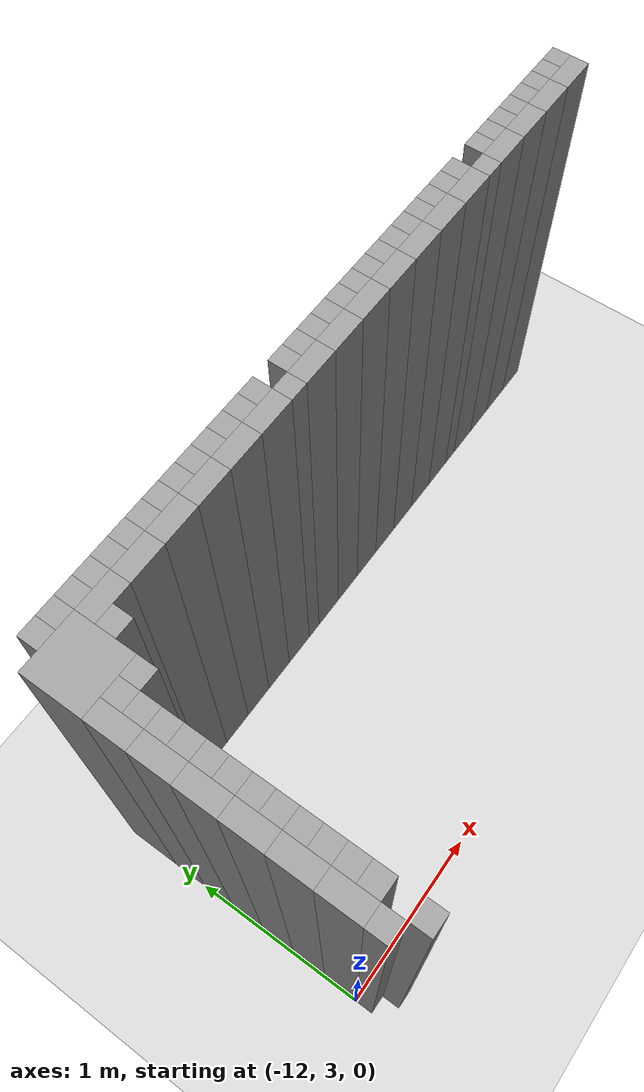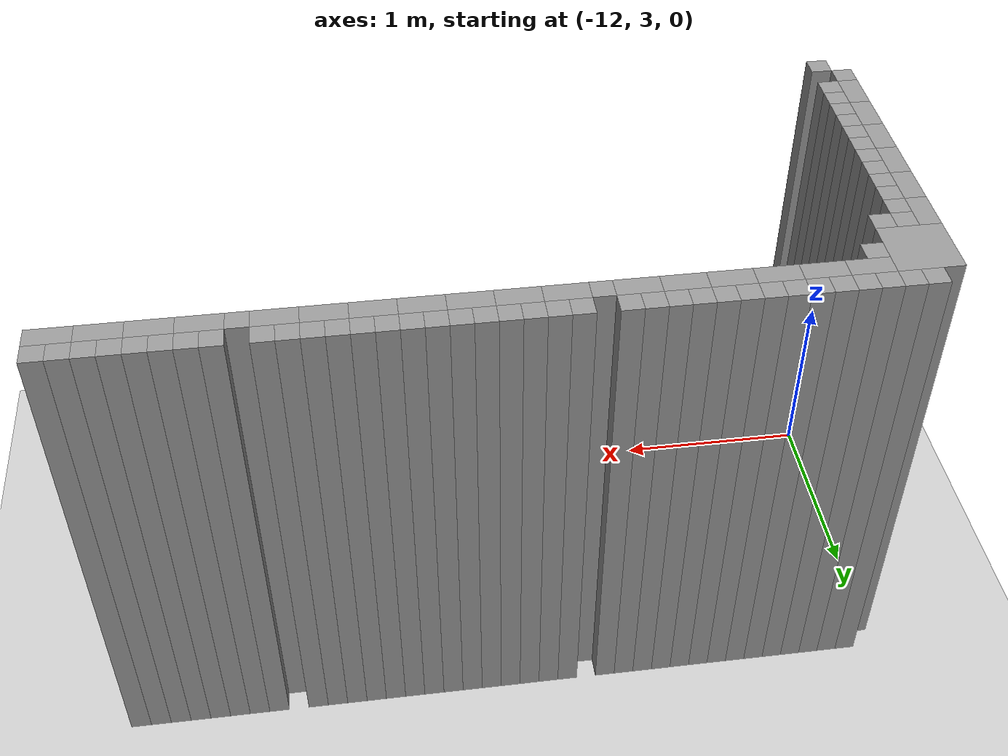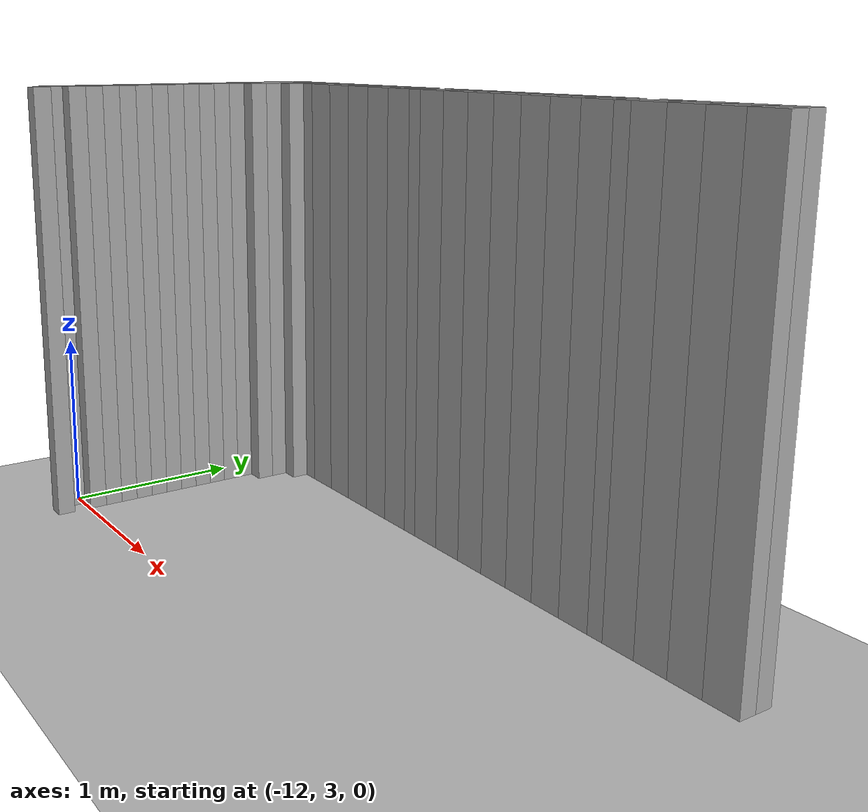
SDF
<sdf version="1.6">
 <world name="default">
  <include><uri>model://sun</uri></include>
  <include><uri>model://ground_plane</uri></include>
  <model name="stage_test">
   <static>1</static>
   <pose>-12 -12 0 0 0 0</pose>
   <link name="Wall_1">
    <pose>0.15 16.55 0 0 0 0</pose>
    <collision name="Wall_1_collision">
     <pose>0 0 1.25 0 0 0</pose>
     <geometry><box><size>0.1 0.10000000000000142 2.5</size></box></geometry>
    </collision>
    <visual name="Wall_1_visual">
     <pose>0 0 1.25 0 0 0</pose>
     <geometry><box><size>0.1 0.10000000000000142 2.5</size></box></geometry>
     <material>
      <script><uri>file://media/materials/scripts/gazebo.material</uri><name>Gazebo/Grey</name></script>
      <ambient>1 1 1 1</ambient>
     </material>
    </visual>
   </link>
   <link name="Wall_2">
    <pose>0.25 16.55 0 0 0 0</pose>
    <collision name="Wall_2_collision">
     <pose>0 0 1.25 0 0 0</pose>
     <geometry><box><size>0.10000000000000003 0.10000000000000142 2.5</size></box></geometry>
    </collision>
    <visual name="Wall_2_visual">
     <pose>0 0 1.25 0 0 0</pose>
     <geometry><box><size>0.10000000000000003 0.10000000000000142 2.5</size></box></geometry>
     <material>
      <script><uri>file://media/materials/scripts/gazebo.material</uri><name>Gazebo/Grey</name></script>
      <ambient>1 1 1 1</ambient>
     </material>
    </visual>
   </link>
   <link name="Wall_3">
    <pose>0.35000000000000003 16.55 0 0 0 0</pose>
    <collision name="Wall_3_collision">
     <pose>0 0 1.25 0 0 0</pose>
     <geometry><box><size>0.09999999999999998 0.10000000000000142 2.5</size></box></geometry>
    </collision>
    <visual name="Wall_3_visual">
     <pose>0 0 1.25 0 0 0</pose>
     <geometry><box><size>0.09999999999999998 0.10000000000000142 2.5</size></box></geometry>
     <material>
      <script><uri>file://media/materials/scripts/gazebo.material</uri><name>Gazebo/Grey</name></script>
      <ambient>1 1 1 1</ambient>
     </material>
    </visual>
   </link>
   <link name="Wall_4">
    <pose>0.44999999999999996 16.55 0 0 0 0</pose>
    <collision name="Wall_4_collision">
     <pose>0 0 1.25 0 0 0</pose>
     <geometry><box><size>0.09999999999999998 0.10000000000000142 2.5</size></box></geometry>
    </collision>
    <visual name="Wall_4_visual">
     <pose>0 0 1.25 0 0 0</pose>
     <geometry><box><size>0.09999999999999998 0.10000000000000142 2.5</size></box></geometry>
     <material>
      <script><uri>file://media/materials/scripts/gazebo.material</uri><name>Gazebo/Grey</name></script>
      <ambient>1 1 1 1</ambient>
     </material>
    </visual>
   </link>
   <link name="Wall_5">
    <pose>0.55 16.55 0 0 0 0</pose>
    <collision name="Wall_5_collision">
     <pose>0 0 1.25 0 0 0</pose>
     <geometry><box><size>0.10000000000000009 0.10000000000000142 2.5</size></box></geometry>
    </collision>
    <visual name="Wall_5_visual">
     <pose>0 0 1.25 0 0 0</pose>
     <geometry><box><size>0.10000000000000009 0.10000000000000142 2.5</size></box></geometry>
     <material>
      <script><uri>file://media/materials/scripts/gazebo.material</uri><name>Gazebo/Grey</name></script>
      <ambient>1 1 1 1</ambient>
     </material>
    </visual>
   </link>
   <link name="Wall_6">
    <pose>0.6500000000000001 16.55 0 0 0 0</pose>
    <collision name="Wall_6_collision">
     <pose>0 0 1.25 0 0 0</pose>
     <geometry><box><size>0.09999999999999998 0.10000000000000142 2.5</size></box></geometry>
    </collision>
    <visual name="Wall_6_visual">
     <pose>0 0 1.25 0 0 0</pose>
     <geometry><box><size>0.09999999999999998 0.10000000000000142 2.5</size></box></geometry>
     <material>
      <script><uri>file://media/materials/scripts/gazebo.material</uri><name>Gazebo/Grey</name></script>
      <ambient>1 1 1 1</ambient>
     </material>
    </visual>
   </link>
   <link name="Wall_7">
    <pose>0.75 16.55 0 0 0 0</pose>
    <collision name="Wall_7_collision">
     <pose>0 0 1.25 0 0 0</pose>
     <geometry><box><size>0.09999999999999998 0.10000000000000142 2.5</size></box></geometry>
    </collision>
    <visual name="Wall_7_visual">
     <pose>0 0 1.25 0 0 0</pose>
     <geometry><box><size>0.09999999999999998 0.10000000000000142 2.5</size></box></geometry>
     <material>
      <script><uri>file://media/materials/scripts/gazebo.material</uri><name>Gazebo/Grey</name></script>
      <ambient>1 1 1 1</ambient>
     </material>
    </visual>
   </link>
   <link name="Wall_8">
    <pose>0.8500000000000001 16.55 0 0 0 0</pose>
    <collision name="Wall_8_collision">
     <pose>0 0 1.25 0 0 0</pose>
     <geometry><box><size>0.09999999999999998 0.10000000000000142 2.5</size></box></geometry>
    </collision>
    <visual name="Wall_8_visual">
     <pose>0 0 1.25 0 0 0</pose>
     <geometry><box><size>0.09999999999999998 0.10000000000000142 2.5</size></box></geometry>
     <material>
      <script><uri>file://media/materials/scripts/gazebo.material</uri><name>Gazebo/Grey</name></script>
      <ambient>1 1 1 1</ambient>
     </material>
    </visual>
   </link>
   <link name="Wall_9">
    <pose>0.95 16.55 0 0 0 0</pose>
    <collision name="Wall_9_collision">
     <pose>0 0 1.25 0 0 0</pose>
     <geometry><box><size>0.09999999999999998 0.10000000000000142 2.5</size></box></geometry>
    </collision>
    <visual name="Wall_9_visual">
     <pose>0 0 1.25 0 0 0</pose>
     <geometry><box><size>0.09999999999999998 0.10000000000000142 2.5</size></box></geometry>
     <material>
      <script><uri>file://media/materials/scripts/gazebo.material</uri><name>Gazebo/Grey</name></script>
      <ambient>1 1 1 1</ambient>
     </material>
    </visual>
   </link>
   <link name="Wall_10">
    <pose>1.05 16.55 0 0 0 0</pose>
    <collision name="Wall_10_collision">
     <pose>0 0 1.25 0 0 0</pose>
     <geometry><box><size>0.10000000000000009 0.10000000000000142 2.5</size></box></geometry>
    </collision>
    <visual name="Wall_10_visual">
     <pose>0 0 1.25 0 0 0</pose>
     <geometry><box><size>0.10000000000000009 0.10000000000000142 2.5</size></box></geometry>
     <material>
      <script><uri>file://media/materials/scripts/gazebo.material</uri><name>Gazebo/Grey</name></script>
      <ambient>1 1 1 1</ambient>
     </material>
    </visual>
   </link>
   <link name="Wall_11">
    <pose>1.1500000000000001 16.55 0 0 0 0</pose>
    <collision name="Wall_11_collision">
     <pose>0 0 1.25 0 0 0</pose>
     <geometry><box><size>0.10000000000000009 0.10000000000000142 2.5</size></box></geometry>
    </collision>
    <visual name="Wall_11_visual">
     <pose>0 0 1.25 0 0 0</pose>
     <geometry><box><size>0.10000000000000009 0.10000000000000142 2.5</size></box></geometry>
     <material>
      <script><uri>file://media/materials/scripts/gazebo.material</uri><name>Gazebo/Grey</name></script>
      <ambient>1 1 1 1</ambient>
     </material>
    </visual>
   </link>
   <link name="Wall_12">
    <pose>1.25 16.55 0 0 0 0</pose>
    <collision name="Wall_12_collision">
     <pose>0 0 1.25 0 0 0</pose>
     <geometry><box><size>0.09999999999999987 0.10000000000000142 2.5</size></box></geometry>
    </collision>
    <visual name="Wall_12_visual">
     <pose>0 0 1.25 0 0 0</pose>
     <geometry><box><size>0.09999999999999987 0.10000000000000142 2.5</size></box></geometry>
     <material>
      <script><uri>file://media/materials/scripts/gazebo.material</uri><name>Gazebo/Grey</name></script>
      <ambient>1 1 1 1</ambient>
     </material>
    </visual>
   </link>
   <link name="Wall_13">
    <pose>1.35 16.55 0 0 0 0</pose>
    <collision name="Wall_13_collision">
     <pose>0 0 1.25 0 0 0</pose>
     <geometry><box><size>0.10000000000000009 0.10000000000000142 2.5</size></box></geometry>
    </collision>
    <visual name="Wall_13_visual">
     <pose>0 0 1.25 0 0 0</pose>
     <geometry><box><size>0.10000000000000009 0.10000000000000142 2.5</size></box></geometry>
     <material>
      <script><uri>file://media/materials/scripts/gazebo.material</uri><name>Gazebo/Grey</name></script>
      <ambient>1 1 1 1</ambient>
     </material>
    </visual>
   </link>
   <link name="Wall_14">
    <pose>1.4500000000000002 16.55 0 0 0 0</pose>
    <collision name="Wall_14_collision">
     <pose>0 0 1.25 0 0 0</pose>
     <geometry><box><size>0.09999999999999987 0.10000000000000142 2.5</size></box></geometry>
    </collision>
    <visual name="Wall_14_visual">
     <pose>0 0 1.25 0 0 0</pose>
     <geometry><box><size>0.09999999999999987 0.10000000000000142 2.5</size></box></geometry>
     <material>
      <script><uri>file://media/materials/scripts/gazebo.material</uri><name>Gazebo/Grey</name></script>
      <ambient>1 1 1 1</ambient>
     </material>
    </visual>
   </link>
   <link name="Wall_15">
    <pose>0.15000000000000002 16.35 0 0 0 0</pose>
    <collision name="Wall_15_collision">
     <pose>0 0 1.25 0 0 0</pose>
     <geometry><box><size>0.30000000000000004 0.3000000000000007 2.5</size></box></geometry>
    </collision>
    <visual name="Wall_15_visual">
     <pose>0 0 1.25 0 0 0</pose>
     <geometry><box><size>0.30000000000000004 0.3000000000000007 2.5</size></box></geometry>
     <material>
      <script><uri>file://media/materials/scripts/gazebo.material</uri><name>Gazebo/Grey</name></script>
      <ambient>1 1 1 1</ambient>
     </material>
    </visual>
   </link>
   <link name="Wall_16">
    <pose>0.05 16.1 0 0 0 0</pose>
    <collision name="Wall_16_collision">
     <pose>0 0 1.25 0 0 0</pose>
     <geometry><box><size>0.1 0.1999999999999993 2.5</size></box></geometry>
    </collision>
    <visual name="Wall_16_visual">
     <pose>0 0 1.25 0 0 0</pose>
     <geometry><box><size>0.1 0.1999999999999993 2.5</size></box></geometry>
     <material>
      <script><uri>file://media/materials/scripts/gazebo.material</uri><name>Gazebo/Grey</name></script>
      <ambient>1 1 1 1</ambient>
     </material>
    </visual>
   </link>
   <link name="Wall_17">
    <pose>0.05 15.9 0 0 0 0</pose>
    <collision name="Wall_17_collision">
     <pose>0 0 1.25 0 0 0</pose>
     <geometry><box><size>0.1 0.1999999999999993 2.5</size></box></geometry>
    </collision>
    <visual name="Wall_17_visual">
     <pose>0 0 1.25 0 0 0</pose>
     <geometry><box><size>0.1 0.1999999999999993 2.5</size></box></geometry>
     <material>
      <script><uri>file://media/materials/scripts/gazebo.material</uri><name>Gazebo/Grey</name></script>
      <ambient>1 1 1 1</ambient>
     </material>
    </visual>
   </link>
   <link name="Wall_18">
    <pose>0.15 16.150000000000002 0 0 0 0</pose>
    <collision name="Wall_18_collision">
     <pose>0 0 1.25 0 0 0</pose>
     <geometry><box><size>0.1 0.09999999999999787 2.5</size></box></geometry>
    </collision>
    <visual name="Wall_18_visual">
     <pose>0 0 1.25 0 0 0</pose>
     <geometry><box><size>0.1 0.09999999999999787 2.5</size></box></geometry>
     <material>
      <script><uri>file://media/materials/scripts/gazebo.material</uri><name>Gazebo/Grey</name></script>
      <ambient>1 1 1 1</ambient>
     </material>
    </visual>
   </link>
   <link name="Wall_19">
    <pose>0.15 16.05 0 0 0 0</pose>
    <collision name="Wall_19_collision">
     <pose>0 0 1.25 0 0 0</pose>
     <geometry><box><size>0.1 0.10000000000000142 2.5</size></box></geometry>
    </collision>
    <visual name="Wall_19_visual">
     <pose>0 0 1.25 0 0 0</pose>
     <geometry><box><size>0.1 0.10000000000000142 2.5</size></box></geometry>
     <material>
      <script><uri>file://media/materials/scripts/gazebo.material</uri><name>Gazebo/Grey</name></script>
      <ambient>1 1 1 1</ambient>
     </material>
    </visual>
   </link>
   <link name="Wall_20">
    <pose>0.25 16.150000000000002 0 0 0 0</pose>
    <collision name="Wall_20_collision">
     <pose>0 0 1.25 0 0 0</pose>
     <geometry><box><size>0.10000000000000003 0.09999999999999787 2.5</size></box></geometry>
    </collision>
    <visual name="Wall_20_visual">
     <pose>0 0 1.25 0 0 0</pose>
     <geometry><box><size>0.10000000000000003 0.09999999999999787 2.5</size></box></geometry>
     <material>
      <script><uri>file://media/materials/scripts/gazebo.material</uri><name>Gazebo/Grey</name></script>
      <ambient>1 1 1 1</ambient>
     </material>
    </visual>
   </link>
   <link name="Wall_21">
    <pose>0.15 15.95 0 0 0 0</pose>
    <collision name="Wall_21_collision">
     <pose>0 0 1.25 0 0 0</pose>
     <geometry><box><size>0.1 0.09999999999999964 2.5</size></box></geometry>
    </collision>
    <visual name="Wall_21_visual">
     <pose>0 0 1.25 0 0 0</pose>
     <geometry><box><size>0.1 0.09999999999999964 2.5</size></box></geometry>
     <material>
      <script><uri>file://media/materials/scripts/gazebo.material</uri><name>Gazebo/Grey</name></script>
      <ambient>1 1 1 1</ambient>
     </material>
    </visual>
   </link>
   <link name="Wall_22">
    <pose>0.15 15.85 0 0 0 0</pose>
    <collision name="Wall_22_collision">
     <pose>0 0 1.25 0 0 0</pose>
     <geometry><box><size>0.1 0.09999999999999964 2.5</size></box></geometry>
    </collision>
    <visual name="Wall_22_visual">
     <pose>0 0 1.25 0 0 0</pose>
     <geometry><box><size>0.1 0.09999999999999964 2.5</size></box></geometry>
     <material>
      <script><uri>file://media/materials/scripts/gazebo.material</uri><name>Gazebo/Grey</name></script>
      <ambient>1 1 1 1</ambient>
     </material>
    </visual>
   </link>
   <link name="Wall_23">
    <pose>0.4 16.450000000000003 0 0 0 0</pose>
    <collision name="Wall_23_collision">
     <pose>0 0 1.25 0 0 0</pose>
     <geometry><box><size>0.19999999999999996 0.09999999999999787 2.5</size></box></geometry>
    </collision>
    <visual name="Wall_23_visual">
     <pose>0 0 1.25 0 0 0</pose>
     <geometry><box><size>0.19999999999999996 0.09999999999999787 2.5</size></box></geometry>
     <material>
      <script><uri>file://media/materials/scripts/gazebo.material</uri><name>Gazebo/Grey</name></script>
      <ambient>1 1 1 1</ambient>
     </material>
    </visual>
   </link>
   <link name="Wall_24">
    <pose>0.35000000000000003 16.35 0 0 0 0</pose>
    <collision name="Wall_24_collision">
     <pose>0 0 1.25 0 0 0</pose>
     <geometry><box><size>0.09999999999999998 0.10000000000000142 2.5</size></box></geometry>
    </collision>
    <visual name="Wall_24_visual">
     <pose>0 0 1.25 0 0 0</pose>
     <geometry><box><size>0.09999999999999998 0.10000000000000142 2.5</size></box></geometry>
     <material>
      <script><uri>file://media/materials/scripts/gazebo.material</uri><name>Gazebo/Grey</name></script>
      <ambient>1 1 1 1</ambient>
     </material>
    </visual>
   </link>
   <link name="Wall_25">
    <pose>0.6000000000000001 16.450000000000003 0 0 0 0</pose>
    <collision name="Wall_25_collision">
     <pose>0 0 1.25 0 0 0</pose>
     <geometry><box><size>0.20000000000000007 0.09999999999999787 2.5</size></box></geometry>
    </collision>
    <visual name="Wall_25_visual">
     <pose>0 0 1.25 0 0 0</pose>
     <geometry><box><size>0.20000000000000007 0.09999999999999787 2.5</size></box></geometry>
     <material>
      <script><uri>file://media/materials/scripts/gazebo.material</uri><name>Gazebo/Grey</name></script>
      <ambient>1 1 1 1</ambient>
     </material>
    </visual>
   </link>
   <link name="Wall_26">
    <pose>0.05 15.7 0 0 0 0</pose>
    <collision name="Wall_26_collision">
     <pose>0 0 1.25 0 0 0</pose>
     <geometry><box><size>0.1 0.1999999999999993 2.5</size></box></geometry>
    </collision>
    <visual name="Wall_26_visual">
     <pose>0 0 1.25 0 0 0</pose>
     <geometry><box><size>0.1 0.1999999999999993 2.5</size></box></geometry>
     <material>
      <script><uri>file://media/materials/scripts/gazebo.material</uri><name>Gazebo/Grey</name></script>
      <ambient>1 1 1 1</ambient>
     </material>
    </visual>
   </link>
   <link name="Wall_27">
    <pose>0.05 15.500000000000002 0 0 0 0</pose>
    <collision name="Wall_27_collision">
     <pose>0 0 1.25 0 0 0</pose>
     <geometry><box><size>0.1 0.20000000000000107 2.5</size></box></geometry>
    </collision>
    <visual name="Wall_27_visual">
     <pose>0 0 1.25 0 0 0</pose>
     <geometry><box><size>0.1 0.20000000000000107 2.5</size></box></geometry>
     <material>
      <script><uri>file://media/materials/scripts/gazebo.material</uri><name>Gazebo/Grey</name></script>
      <ambient>1 1 1 1</ambient>
     </material>
    </visual>
   </link>
   <link name="Wall_28">
    <pose>0.15 15.75 0 0 0 0</pose>
    <collision name="Wall_28_collision">
     <pose>0 0 1.25 0 0 0</pose>
     <geometry><box><size>0.1 0.09999999999999964 2.5</size></box></geometry>
    </collision>
    <visual name="Wall_28_visual">
     <pose>0 0 1.25 0 0 0</pose>
     <geometry><box><size>0.1 0.09999999999999964 2.5</size></box></geometry>
     <material>
      <script><uri>file://media/materials/scripts/gazebo.material</uri><name>Gazebo/Grey</name></script>
      <ambient>1 1 1 1</ambient>
     </material>
    </visual>
   </link>
   <link name="Wall_29">
    <pose>0.15 15.650000000000002 0 0 0 0</pose>
    <collision name="Wall_29_collision">
     <pose>0 0 1.25 0 0 0</pose>
     <geometry><box><size>0.1 0.09999999999999964 2.5</size></box></geometry>
    </collision>
    <visual name="Wall_29_visual">
     <pose>0 0 1.25 0 0 0</pose>
     <geometry><box><size>0.1 0.09999999999999964 2.5</size></box></geometry>
     <material>
      <script><uri>file://media/materials/scripts/gazebo.material</uri><name>Gazebo/Grey</name></script>
      <ambient>1 1 1 1</ambient>
     </material>
    </visual>
   </link>
   <link name="Wall_30">
    <pose>0.15 15.55 0 0 0 0</pose>
    <collision name="Wall_30_collision">
     <pose>0 0 1.25 0 0 0</pose>
     <geometry><box><size>0.1 0.10000000000000142 2.5</size></box></geometry>
    </collision>
    <visual name="Wall_30_visual">
     <pose>0 0 1.25 0 0 0</pose>
     <geometry><box><size>0.1 0.10000000000000142 2.5</size></box></geometry>
     <material>
      <script><uri>file://media/materials/scripts/gazebo.material</uri><name>Gazebo/Grey</name></script>
      <ambient>1 1 1 1</ambient>
     </material>
    </visual>
   </link>
   <link name="Wall_31">
    <pose>0.15 15.45 0 0 0 0</pose>
    <collision name="Wall_31_collision">
     <pose>0 0 1.25 0 0 0</pose>
     <geometry><box><size>0.1 0.09999999999999964 2.5</size></box></geometry>
    </collision>
    <visual name="Wall_31_visual">
     <pose>0 0 1.25 0 0 0</pose>
     <geometry><box><size>0.1 0.09999999999999964 2.5</size></box></geometry>
     <material>
      <script><uri>file://media/materials/scripts/gazebo.material</uri><name>Gazebo/Grey</name></script>
      <ambient>1 1 1 1</ambient>
     </material>
    </visual>
   </link>
   <link name="Wall_32">
    <pose>0.05 15.3 0 0 0 0</pose>
    <collision name="Wall_32_collision">
     <pose>0 0 1.25 0 0 0</pose>
     <geometry><box><size>0.1 0.1999999999999993 2.5</size></box></geometry>
    </collision>
    <visual name="Wall_32_visual">
     <pose>0 0 1.25 0 0 0</pose>
     <geometry><box><size>0.1 0.1999999999999993 2.5</size></box></geometry>
     <material>
      <script><uri>file://media/materials/scripts/gazebo.material</uri><name>Gazebo/Grey</name></script>
      <ambient>1 1 1 1</ambient>
     </material>
    </visual>
   </link>
   <link name="Wall_33">
    <pose>0.05 15.100000000000001 0 0 0 0</pose>
    <collision name="Wall_33_collision">
     <pose>0 0 1.25 0 0 0</pose>
     <geometry><box><size>0.1 0.20000000000000107 2.5</size></box></geometry>
    </collision>
    <visual name="Wall_33_visual">
     <pose>0 0 1.25 0 0 0</pose>
     <geometry><box><size>0.1 0.20000000000000107 2.5</size></box></geometry>
     <material>
      <script><uri>file://media/materials/scripts/gazebo.material</uri><name>Gazebo/Grey</name></script>
      <ambient>1 1 1 1</ambient>
     </material>
    </visual>
   </link>
   <link name="Wall_34">
    <pose>0.15 15.35 0 0 0 0</pose>
    <collision name="Wall_34_collision">
     <pose>0 0 1.25 0 0 0</pose>
     <geometry><box><size>0.1 0.09999999999999964 2.5</size></box></geometry>
    </collision>
    <visual name="Wall_34_visual">
     <pose>0 0 1.25 0 0 0</pose>
     <geometry><box><size>0.1 0.09999999999999964 2.5</size></box></geometry>
     <material>
      <script><uri>file://media/materials/scripts/gazebo.material</uri><name>Gazebo/Grey</name></script>
      <ambient>1 1 1 1</ambient>
     </material>
    </visual>
   </link>
   <link name="Wall_35">
    <pose>0.15 15.25 0 0 0 0</pose>
    <collision name="Wall_35_collision">
     <pose>0 0 1.25 0 0 0</pose>
     <geometry><box><size>0.1 0.09999999999999964 2.5</size></box></geometry>
    </collision>
    <visual name="Wall_35_visual">
     <pose>0 0 1.25 0 0 0</pose>
     <geometry><box><size>0.1 0.09999999999999964 2.5</size></box></geometry>
     <material>
      <script><uri>file://media/materials/scripts/gazebo.material</uri><name>Gazebo/Grey</name></script>
      <ambient>1 1 1 1</ambient>
     </material>
    </visual>
   </link>
   <link name="Wall_36">
    <pose>0.15 15.150000000000002 0 0 0 0</pose>
    <collision name="Wall_36_collision">
     <pose>0 0 1.25 0 0 0</pose>
     <geometry><box><size>0.1 0.09999999999999964 2.5</size></box></geometry>
    </collision>
    <visual name="Wall_36_visual">
     <pose>0 0 1.25 0 0 0</pose>
     <geometry><box><size>0.1 0.09999999999999964 2.5</size></box></geometry>
     <material>
      <script><uri>file://media/materials/scripts/gazebo.material</uri><name>Gazebo/Grey</name></script>
      <ambient>1 1 1 1</ambient>
     </material>
    </visual>
   </link>
   <link name="Wall_37">
    <pose>0.15 15.05 0 0 0 0</pose>
    <collision name="Wall_37_collision">
     <pose>0 0 1.25 0 0 0</pose>
     <geometry><box><size>0.1 0.10000000000000142 2.5</size></box></geometry>
    </collision>
    <visual name="Wall_37_visual">
     <pose>0 0 1.25 0 0 0</pose>
     <geometry><box><size>0.1 0.10000000000000142 2.5</size></box></geometry>
     <material>
      <script><uri>file://media/materials/scripts/gazebo.material</uri><name>Gazebo/Grey</name></script>
      <ambient>1 1 1 1</ambient>
     </material>
    </visual>
   </link>
   <link name="Wall_38">
    <pose>0.8 16.450000000000003 0 0 0 0</pose>
    <collision name="Wall_38_collision">
     <pose>0 0 1.25 0 0 0</pose>
     <geometry><box><size>0.19999999999999996 0.09999999999999787 2.5</size></box></geometry>
    </collision>
    <visual name="Wall_38_visual">
     <pose>0 0 1.25 0 0 0</pose>
     <geometry><box><size>0.19999999999999996 0.09999999999999787 2.5</size></box></geometry>
     <material>
      <script><uri>file://media/materials/scripts/gazebo.material</uri><name>Gazebo/Grey</name></script>
      <ambient>1 1 1 1</ambient>
     </material>
    </visual>
   </link>
   <link name="Wall_39">
    <pose>1.0 16.450000000000003 0 0 0 0</pose>
    <collision name="Wall_39_collision">
     <pose>0 0 1.25 0 0 0</pose>
     <geometry><box><size>0.20000000000000007 0.09999999999999787 2.5</size></box></geometry>
    </collision>
    <visual name="Wall_39_visual">
     <pose>0 0 1.25 0 0 0</pose>
     <geometry><box><size>0.20000000000000007 0.09999999999999787 2.5</size></box></geometry>
     <material>
      <script><uri>file://media/materials/scripts/gazebo.material</uri><name>Gazebo/Grey</name></script>
      <ambient>1 1 1 1</ambient>
     </material>
    </visual>
   </link>
   <link name="Wall_40">
    <pose>1.2000000000000002 16.450000000000003 0 0 0 0</pose>
    <collision name="Wall_40_collision">
     <pose>0 0 1.25 0 0 0</pose>
     <geometry><box><size>0.19999999999999996 0.09999999999999787 2.5</size></box></geometry>
    </collision>
    <visual name="Wall_40_visual">
     <pose>0 0 1.25 0 0 0</pose>
     <geometry><box><size>0.19999999999999996 0.09999999999999787 2.5</size></box></geometry>
     <material>
      <script><uri>file://media/materials/scripts/gazebo.material</uri><name>Gazebo/Grey</name></script>
      <ambient>1 1 1 1</ambient>
     </material>
    </visual>
   </link>
   <link name="Wall_41">
    <pose>1.4 16.450000000000003 0 0 0 0</pose>
    <collision name="Wall_41_collision">
     <pose>0 0 1.25 0 0 0</pose>
     <geometry><box><size>0.19999999999999996 0.09999999999999787 2.5</size></box></geometry>
    </collision>
    <visual name="Wall_41_visual">
     <pose>0 0 1.25 0 0 0</pose>
     <geometry><box><size>0.19999999999999996 0.09999999999999787 2.5</size></box></geometry>
     <material>
      <script><uri>file://media/materials/scripts/gazebo.material</uri><name>Gazebo/Grey</name></script>
      <ambient>1 1 1 1</ambient>
     </material>
    </visual>
   </link>
   <link name="Wall_42">
    <pose>1.65 16.55 0 0 0 0</pose>
    <collision name="Wall_42_collision">
     <pose>0 0 1.25 0 0 0</pose>
     <geometry><box><size>0.10000000000000009 0.10000000000000142 2.5</size></box></geometry>
    </collision>
    <visual name="Wall_42_visual">
     <pose>0 0 1.25 0 0 0</pose>
     <geometry><box><size>0.10000000000000009 0.10000000000000142 2.5</size></box></geometry>
     <material>
      <script><uri>file://media/materials/scripts/gazebo.material</uri><name>Gazebo/Grey</name></script>
      <ambient>1 1 1 1</ambient>
     </material>
    </visual>
   </link>
   <link name="Wall_43">
    <pose>1.75 16.55 0 0 0 0</pose>
    <collision name="Wall_43_collision">
     <pose>0 0 1.25 0 0 0</pose>
     <geometry><box><size>0.09999999999999987 0.10000000000000142 2.5</size></box></geometry>
    </collision>
    <visual name="Wall_43_visual">
     <pose>0 0 1.25 0 0 0</pose>
     <geometry><box><size>0.09999999999999987 0.10000000000000142 2.5</size></box></geometry>
     <material>
      <script><uri>file://media/materials/scripts/gazebo.material</uri><name>Gazebo/Grey</name></script>
      <ambient>1 1 1 1</ambient>
     </material>
    </visual>
   </link>
   <link name="Wall_44">
    <pose>1.85 16.55 0 0 0 0</pose>
    <collision name="Wall_44_collision">
     <pose>0 0 1.25 0 0 0</pose>
     <geometry><box><size>0.10000000000000009 0.10000000000000142 2.5</size></box></geometry>
    </collision>
    <visual name="Wall_44_visual">
     <pose>0 0 1.25 0 0 0</pose>
     <geometry><box><size>0.10000000000000009 0.10000000000000142 2.5</size></box></geometry>
     <material>
      <script><uri>file://media/materials/scripts/gazebo.material</uri><name>Gazebo/Grey</name></script>
      <ambient>1 1 1 1</ambient>
     </material>
    </visual>
   </link>
   <link name="Wall_45">
    <pose>1.9500000000000002 16.55 0 0 0 0</pose>
    <collision name="Wall_45_collision">
     <pose>0 0 1.25 0 0 0</pose>
     <geometry><box><size>0.09999999999999987 0.10000000000000142 2.5</size></box></geometry>
    </collision>
    <visual name="Wall_45_visual">
     <pose>0 0 1.25 0 0 0</pose>
     <geometry><box><size>0.09999999999999987 0.10000000000000142 2.5</size></box></geometry>
     <material>
      <script><uri>file://media/materials/scripts/gazebo.material</uri><name>Gazebo/Grey</name></script>
      <ambient>1 1 1 1</ambient>
     </material>
    </visual>
   </link>
   <link name="Wall_46">
    <pose>2.05 16.55 0 0 0 0</pose>
    <collision name="Wall_46_collision">
     <pose>0 0 1.25 0 0 0</pose>
     <geometry><box><size>0.10000000000000009 0.10000000000000142 2.5</size></box></geometry>
    </collision>
    <visual name="Wall_46_visual">
     <pose>0 0 1.25 0 0 0</pose>
     <geometry><box><size>0.10000000000000009 0.10000000000000142 2.5</size></box></geometry>
     <material>
      <script><uri>file://media/materials/scripts/gazebo.material</uri><name>Gazebo/Grey</name></script>
      <ambient>1 1 1 1</ambient>
     </material>
    </visual>
   </link>
   <link name="Wall_47">
    <pose>2.1500000000000004 16.55 0 0 0 0</pose>
    <collision name="Wall_47_collision">
     <pose>0 0 1.25 0 0 0</pose>
     <geometry><box><size>0.10000000000000009 0.10000000000000142 2.5</size></box></geometry>
    </collision>
    <visual name="Wall_47_visual">
     <pose>0 0 1.25 0 0 0</pose>
     <geometry><box><size>0.10000000000000009 0.10000000000000142 2.5</size></box></geometry>
     <material>
      <script><uri>file://media/materials/scripts/gazebo.material</uri><name>Gazebo/Grey</name></script>
      <ambient>1 1 1 1</ambient>
     </material>
    </visual>
   </link>
   <link name="Wall_48">
    <pose>2.25 16.55 0 0 0 0</pose>
    <collision name="Wall_48_collision">
     <pose>0 0 1.25 0 0 0</pose>
     <geometry><box><size>0.10000000000000009 0.10000000000000142 2.5</size></box></geometry>
    </collision>
    <visual name="Wall_48_visual">
     <pose>0 0 1.25 0 0 0</pose>
     <geometry><box><size>0.10000000000000009 0.10000000000000142 2.5</size></box></geometry>
     <material>
      <script><uri>file://media/materials/scripts/gazebo.material</uri><name>Gazebo/Grey</name></script>
      <ambient>1 1 1 1</ambient>
     </material>
    </visual>
   </link>
   <link name="Wall_49">
    <pose>2.3500000000000005 16.55 0 0 0 0</pose>
    <collision name="Wall_49_collision">
     <pose>0 0 1.25 0 0 0</pose>
     <geometry><box><size>0.10000000000000009 0.10000000000000142 2.5</size></box></geometry>
    </collision>
    <visual name="Wall_49_visual">
     <pose>0 0 1.25 0 0 0</pose>
     <geometry><box><size>0.10000000000000009 0.10000000000000142 2.5</size></box></geometry>
     <material>
      <script><uri>file://media/materials/scripts/gazebo.material</uri><name>Gazebo/Grey</name></script>
      <ambient>1 1 1 1</ambient>
     </material>
    </visual>
   </link>
   <link name="Wall_50">
    <pose>2.45 16.55 0 0 0 0</pose>
    <collision name="Wall_50_collision">
     <pose>0 0 1.25 0 0 0</pose>
     <geometry><box><size>0.09999999999999964 0.10000000000000142 2.5</size></box></geometry>
    </collision>
    <visual name="Wall_50_visual">
     <pose>0 0 1.25 0 0 0</pose>
     <geometry><box><size>0.09999999999999964 0.10000000000000142 2.5</size></box></geometry>
     <material>
      <script><uri>file://media/materials/scripts/gazebo.material</uri><name>Gazebo/Grey</name></script>
      <ambient>1 1 1 1</ambient>
     </material>
    </visual>
   </link>
   <link name="Wall_51">
    <pose>2.55 16.55 0 0 0 0</pose>
    <collision name="Wall_51_collision">
     <pose>0 0 1.25 0 0 0</pose>
     <geometry><box><size>0.10000000000000009 0.10000000000000142 2.5</size></box></geometry>
    </collision>
    <visual name="Wall_51_visual">
     <pose>0 0 1.25 0 0 0</pose>
     <geometry><box><size>0.10000000000000009 0.10000000000000142 2.5</size></box></geometry>
     <material>
      <script><uri>file://media/materials/scripts/gazebo.material</uri><name>Gazebo/Grey</name></script>
      <ambient>1 1 1 1</ambient>
     </material>
    </visual>
   </link>
   <link name="Wall_52">
    <pose>2.65 16.55 0 0 0 0</pose>
    <collision name="Wall_52_collision">
     <pose>0 0 1.25 0 0 0</pose>
     <geometry><box><size>0.10000000000000009 0.10000000000000142 2.5</size></box></geometry>
    </collision>
    <visual name="Wall_52_visual">
     <pose>0 0 1.25 0 0 0</pose>
     <geometry><box><size>0.10000000000000009 0.10000000000000142 2.5</size></box></geometry>
     <material>
      <script><uri>file://media/materials/scripts/gazebo.material</uri><name>Gazebo/Grey</name></script>
      <ambient>1 1 1 1</ambient>
     </material>
    </visual>
   </link>
   <link name="Wall_53">
    <pose>2.75 16.55 0 0 0 0</pose>
    <collision name="Wall_53_collision">
     <pose>0 0 1.25 0 0 0</pose>
     <geometry><box><size>0.10000000000000009 0.10000000000000142 2.5</size></box></geometry>
    </collision>
    <visual name="Wall_53_visual">
     <pose>0 0 1.25 0 0 0</pose>
     <geometry><box><size>0.10000000000000009 0.10000000000000142 2.5</size></box></geometry>
     <material>
      <script><uri>file://media/materials/scripts/gazebo.material</uri><name>Gazebo/Grey</name></script>
      <ambient>1 1 1 1</ambient>
     </material>
    </visual>
   </link>
   <link name="Wall_54">
    <pose>2.8500000000000005 16.55 0 0 0 0</pose>
    <collision name="Wall_54_collision">
     <pose>0 0 1.25 0 0 0</pose>
     <geometry><box><size>0.10000000000000009 0.10000000000000142 2.5</size></box></geometry>
    </collision>
    <visual name="Wall_54_visual">
     <pose>0 0 1.25 0 0 0</pose>
     <geometry><box><size>0.10000000000000009 0.10000000000000142 2.5</size></box></geometry>
     <material>
      <script><uri>file://media/materials/scripts/gazebo.material</uri><name>Gazebo/Grey</name></script>
      <ambient>1 1 1 1</ambient>
     </material>
    </visual>
   </link>
   <link name="Wall_55">
    <pose>2.95 16.55 0 0 0 0</pose>
    <collision name="Wall_55_collision">
     <pose>0 0 1.25 0 0 0</pose>
     <geometry><box><size>0.09999999999999964 0.10000000000000142 2.5</size></box></geometry>
    </collision>
    <visual name="Wall_55_visual">
     <pose>0 0 1.25 0 0 0</pose>
     <geometry><box><size>0.09999999999999964 0.10000000000000142 2.5</size></box></geometry>
     <material>
      <script><uri>file://media/materials/scripts/gazebo.material</uri><name>Gazebo/Grey</name></script>
      <ambient>1 1 1 1</ambient>
     </material>
    </visual>
   </link>
   <link name="Wall_56">
    <pose>1.55 16.450000000000003 0 0 0 0</pose>
    <collision name="Wall_56_collision">
     <pose>0 0 1.25 0 0 0</pose>
     <geometry><box><size>0.10000000000000009 0.09999999999999787 2.5</size></box></geometry>
    </collision>
    <visual name="Wall_56_visual">
     <pose>0 0 1.25 0 0 0</pose>
     <geometry><box><size>0.10000000000000009 0.09999999999999787 2.5</size></box></geometry>
     <material>
      <script><uri>file://media/materials/scripts/gazebo.material</uri><name>Gazebo/Grey</name></script>
      <ambient>1 1 1 1</ambient>
     </material>
    </visual>
   </link>
   <link name="Wall_57">
    <pose>1.7000000000000002 16.450000000000003 0 0 0 0</pose>
    <collision name="Wall_57_collision">
     <pose>0 0 1.25 0 0 0</pose>
     <geometry><box><size>0.19999999999999996 0.09999999999999787 2.5</size></box></geometry>
    </collision>
    <visual name="Wall_57_visual">
     <pose>0 0 1.25 0 0 0</pose>
     <geometry><box><size>0.19999999999999996 0.09999999999999787 2.5</size></box></geometry>
     <material>
      <script><uri>file://media/materials/scripts/gazebo.material</uri><name>Gazebo/Grey</name></script>
      <ambient>1 1 1 1</ambient>
     </material>
    </visual>
   </link>
   <link name="Wall_58">
    <pose>1.9 16.450000000000003 0 0 0 0</pose>
    <collision name="Wall_58_collision">
     <pose>0 0 1.25 0 0 0</pose>
     <geometry><box><size>0.19999999999999996 0.09999999999999787 2.5</size></box></geometry>
    </collision>
    <visual name="Wall_58_visual">
     <pose>0 0 1.25 0 0 0</pose>
     <geometry><box><size>0.19999999999999996 0.09999999999999787 2.5</size></box></geometry>
     <material>
      <script><uri>file://media/materials/scripts/gazebo.material</uri><name>Gazebo/Grey</name></script>
      <ambient>1 1 1 1</ambient>
     </material>
    </visual>
   </link>
   <link name="Wall_59">
    <pose>2.1 16.450000000000003 0 0 0 0</pose>
    <collision name="Wall_59_collision">
     <pose>0 0 1.25 0 0 0</pose>
     <geometry><box><size>0.20000000000000018 0.09999999999999787 2.5</size></box></geometry>
    </collision>
    <visual name="Wall_59_visual">
     <pose>0 0 1.25 0 0 0</pose>
     <geometry><box><size>0.20000000000000018 0.09999999999999787 2.5</size></box></geometry>
     <material>
      <script><uri>file://media/materials/scripts/gazebo.material</uri><name>Gazebo/Grey</name></script>
      <ambient>1 1 1 1</ambient>
     </material>
    </visual>
   </link>
   <link name="Wall_60">
    <pose>2.3000000000000003 16.450000000000003 0 0 0 0</pose>
    <collision name="Wall_60_collision">
     <pose>0 0 1.25 0 0 0</pose>
     <geometry><box><size>0.20000000000000018 0.09999999999999787 2.5</size></box></geometry>
    </collision>
    <visual name="Wall_60_visual">
     <pose>0 0 1.25 0 0 0</pose>
     <geometry><box><size>0.20000000000000018 0.09999999999999787 2.5</size></box></geometry>
     <material>
      <script><uri>file://media/materials/scripts/gazebo.material</uri><name>Gazebo/Grey</name></script>
      <ambient>1 1 1 1</ambient>
     </material>
    </visual>
   </link>
   <link name="Wall_61">
    <pose>2.5 16.450000000000003 0 0 0 0</pose>
    <collision name="Wall_61_collision">
     <pose>0 0 1.25 0 0 0</pose>
     <geometry><box><size>0.19999999999999973 0.09999999999999787 2.5</size></box></geometry>
    </collision>
    <visual name="Wall_61_visual">
     <pose>0 0 1.25 0 0 0</pose>
     <geometry><box><size>0.19999999999999973 0.09999999999999787 2.5</size></box></geometry>
     <material>
      <script><uri>file://media/materials/scripts/gazebo.material</uri><name>Gazebo/Grey</name></script>
      <ambient>1 1 1 1</ambient>
     </material>
    </visual>
   </link>
   <link name="Wall_62">
    <pose>2.7 16.450000000000003 0 0 0 0</pose>
    <collision name="Wall_62_collision">
     <pose>0 0 1.25 0 0 0</pose>
     <geometry><box><size>0.20000000000000018 0.09999999999999787 2.5</size></box></geometry>
    </collision>
    <visual name="Wall_62_visual">
     <pose>0 0 1.25 0 0 0</pose>
     <geometry><box><size>0.20000000000000018 0.09999999999999787 2.5</size></box></geometry>
     <material>
      <script><uri>file://media/materials/scripts/gazebo.material</uri><name>Gazebo/Grey</name></script>
      <ambient>1 1 1 1</ambient>
     </material>
    </visual>
   </link>
   <link name="Wall_63">
    <pose>2.9000000000000004 16.450000000000003 0 0 0 0</pose>
    <collision name="Wall_63_collision">
     <pose>0 0 1.25 0 0 0</pose>
     <geometry><box><size>0.19999999999999973 0.09999999999999787 2.5</size></box></geometry>
    </collision>
    <visual name="Wall_63_visual">
     <pose>0 0 1.25 0 0 0</pose>
     <geometry><box><size>0.19999999999999973 0.09999999999999787 2.5</size></box></geometry>
     <material>
      <script><uri>file://media/materials/scripts/gazebo.material</uri><name>Gazebo/Grey</name></script>
      <ambient>1 1 1 1</ambient>
     </material>
    </visual>
   </link>
   <link name="Wall_64">
    <pose>0.05 14.95 0 0 0 0</pose>
    <collision name="Wall_64_collision">
     <pose>0 0 1.25 0 0 0</pose>
     <geometry><box><size>0.1 0.09999999999999964 2.5</size></box></geometry>
    </collision>
    <visual name="Wall_64_visual">
     <pose>0 0 1.25 0 0 0</pose>
     <geometry><box><size>0.1 0.09999999999999964 2.5</size></box></geometry>
     <material>
      <script><uri>file://media/materials/scripts/gazebo.material</uri><name>Gazebo/Grey</name></script>
      <ambient>1 1 1 1</ambient>
     </material>
    </visual>
   </link>
   <link name="Wall_66">
    <pose>0.15 14.85 0 0 0 0</pose>
    <collision name="Wall_66_collision">
     <pose>0 0 1.25 0 0 0</pose>
     <geometry><box><size>0.1 0.09999999999999964 2.5</size></box></geometry>
    </collision>
    <visual name="Wall_66_visual">
     <pose>0 0 1.25 0 0 0</pose>
     <geometry><box><size>0.1 0.09999999999999964 2.5</size></box></geometry>
     <material>
      <script><uri>file://media/materials/scripts/gazebo.material</uri><name>Gazebo/Grey</name></script>
      <ambient>1 1 1 1</ambient>
     </material>
    </visual>
   </link>
   <link name="Wall_108">
    <pose>3.15 16.55 0 0 0 0</pose>
    <collision name="Wall_108_collision">
     <pose>0 0 1.25 0 0 0</pose>
     <geometry><box><size>0.10000000000000009 0.10000000000000142 2.5</size></box></geometry>
    </collision>
    <visual name="Wall_108_visual">
     <pose>0 0 1.25 0 0 0</pose>
     <geometry><box><size>0.10000000000000009 0.10000000000000142 2.5</size></box></geometry>
     <material>
      <script><uri>file://media/materials/scripts/gazebo.material</uri><name>Gazebo/Grey</name></script>
      <ambient>1 1 1 1</ambient>
     </material>
    </visual>
   </link>
   <link name="Wall_109">
    <pose>3.25 16.55 0 0 0 0</pose>
    <collision name="Wall_109_collision">
     <pose>0 0 1.25 0 0 0</pose>
     <geometry><box><size>0.10000000000000009 0.10000000000000142 2.5</size></box></geometry>
    </collision>
    <visual name="Wall_109_visual">
     <pose>0 0 1.25 0 0 0</pose>
     <geometry><box><size>0.10000000000000009 0.10000000000000142 2.5</size></box></geometry>
     <material>
      <script><uri>file://media/materials/scripts/gazebo.material</uri><name>Gazebo/Grey</name></script>
      <ambient>1 1 1 1</ambient>
     </material>
    </visual>
   </link>
   <link name="Wall_110">
    <pose>3.3500000000000005 16.55 0 0 0 0</pose>
    <collision name="Wall_110_collision">
     <pose>0 0 1.25 0 0 0</pose>
     <geometry><box><size>0.10000000000000009 0.10000000000000142 2.5</size></box></geometry>
    </collision>
    <visual name="Wall_110_visual">
     <pose>0 0 1.25 0 0 0</pose>
     <geometry><box><size>0.10000000000000009 0.10000000000000142 2.5</size></box></geometry>
     <material>
      <script><uri>file://media/materials/scripts/gazebo.material</uri><name>Gazebo/Grey</name></script>
      <ambient>1 1 1 1</ambient>
     </material>
    </visual>
   </link>
   <link name="Wall_111">
    <pose>3.45 16.55 0 0 0 0</pose>
    <collision name="Wall_111_collision">
     <pose>0 0 1.25 0 0 0</pose>
     <geometry><box><size>0.09999999999999964 0.10000000000000142 2.5</size></box></geometry>
    </collision>
    <visual name="Wall_111_visual">
     <pose>0 0 1.25 0 0 0</pose>
     <geometry><box><size>0.09999999999999964 0.10000000000000142 2.5</size></box></geometry>
     <material>
      <script><uri>file://media/materials/scripts/gazebo.material</uri><name>Gazebo/Grey</name></script>
      <ambient>1 1 1 1</ambient>
     </material>
    </visual>
   </link>
   <link name="Wall_112">
    <pose>3.55 16.55 0 0 0 0</pose>
    <collision name="Wall_112_collision">
     <pose>0 0 1.25 0 0 0</pose>
     <geometry><box><size>0.10000000000000009 0.10000000000000142 2.5</size></box></geometry>
    </collision>
    <visual name="Wall_112_visual">
     <pose>0 0 1.25 0 0 0</pose>
     <geometry><box><size>0.10000000000000009 0.10000000000000142 2.5</size></box></geometry>
     <material>
      <script><uri>file://media/materials/scripts/gazebo.material</uri><name>Gazebo/Grey</name></script>
      <ambient>1 1 1 1</ambient>
     </material>
    </visual>
   </link>
   <link name="Wall_113">
    <pose>3.65 16.55 0 0 0 0</pose>
    <collision name="Wall_113_collision">
     <pose>0 0 1.25 0 0 0</pose>
     <geometry><box><size>0.10000000000000009 0.10000000000000142 2.5</size></box></geometry>
    </collision>
    <visual name="Wall_113_visual">
     <pose>0 0 1.25 0 0 0</pose>
     <geometry><box><size>0.10000000000000009 0.10000000000000142 2.5</size></box></geometry>
     <material>
      <script><uri>file://media/materials/scripts/gazebo.material</uri><name>Gazebo/Grey</name></script>
      <ambient>1 1 1 1</ambient>
     </material>
    </visual>
   </link>
   <link name="Wall_114">
    <pose>3.75 16.55 0 0 0 0</pose>
    <collision name="Wall_114_collision">
     <pose>0 0 1.25 0 0 0</pose>
     <geometry><box><size>0.10000000000000009 0.10000000000000142 2.5</size></box></geometry>
    </collision>
    <visual name="Wall_114_visual">
     <pose>0 0 1.25 0 0 0</pose>
     <geometry><box><size>0.10000000000000009 0.10000000000000142 2.5</size></box></geometry>
     <material>
      <script><uri>file://media/materials/scripts/gazebo.material</uri><name>Gazebo/Grey</name></script>
      <ambient>1 1 1 1</ambient>
     </material>
    </visual>
   </link>
   <link name="Wall_115">
    <pose>3.8500000000000005 16.55 0 0 0 0</pose>
    <collision name="Wall_115_collision">
     <pose>0 0 1.25 0 0 0</pose>
     <geometry><box><size>0.10000000000000009 0.10000000000000142 2.5</size></box></geometry>
    </collision>
    <visual name="Wall_115_visual">
     <pose>0 0 1.25 0 0 0</pose>
     <geometry><box><size>0.10000000000000009 0.10000000000000142 2.5</size></box></geometry>
     <material>
      <script><uri>file://media/materials/scripts/gazebo.material</uri><name>Gazebo/Grey</name></script>
      <ambient>1 1 1 1</ambient>
     </material>
    </visual>
   </link>
   <link name="Wall_122">
    <pose>3.05 16.450000000000003 0 0 0 0</pose>
    <collision name="Wall_122_collision">
     <pose>0 0 1.25 0 0 0</pose>
     <geometry><box><size>0.10000000000000009 0.09999999999999787 2.5</size></box></geometry>
    </collision>
    <visual name="Wall_122_visual">
     <pose>0 0 1.25 0 0 0</pose>
     <geometry><box><size>0.10000000000000009 0.09999999999999787 2.5</size></box></geometry>
     <material>
      <script><uri>file://media/materials/scripts/gazebo.material</uri><name>Gazebo/Grey</name></script>
      <ambient>1 1 1 1</ambient>
     </material>
    </visual>
   </link>
   <link name="Wall_123">
    <pose>3.2 16.450000000000003 0 0 0 0</pose>
    <collision name="Wall_123_collision">
     <pose>0 0 1.25 0 0 0</pose>
     <geometry><box><size>0.20000000000000018 0.09999999999999787 2.5</size></box></geometry>
    </collision>
    <visual name="Wall_123_visual">
     <pose>0 0 1.25 0 0 0</pose>
     <geometry><box><size>0.20000000000000018 0.09999999999999787 2.5</size></box></geometry>
     <material>
      <script><uri>file://media/materials/scripts/gazebo.material</uri><name>Gazebo/Grey</name></script>
      <ambient>1 1 1 1</ambient>
     </material>
    </visual>
   </link>
   <link name="Wall_124">
    <pose>3.4000000000000004 16.450000000000003 0 0 0 0</pose>
    <collision name="Wall_124_collision">
     <pose>0 0 1.25 0 0 0</pose>
     <geometry><box><size>0.19999999999999973 0.09999999999999787 2.5</size></box></geometry>
    </collision>
    <visual name="Wall_124_visual">
     <pose>0 0 1.25 0 0 0</pose>
     <geometry><box><size>0.19999999999999973 0.09999999999999787 2.5</size></box></geometry>
     <material>
      <script><uri>file://media/materials/scripts/gazebo.material</uri><name>Gazebo/Grey</name></script>
      <ambient>1 1 1 1</ambient>
     </material>
    </visual>
   </link>
   <link name="Wall_125">
    <pose>3.6 16.450000000000003 0 0 0 0</pose>
    <collision name="Wall_125_collision">
     <pose>0 0 1.25 0 0 0</pose>
     <geometry><box><size>0.20000000000000018 0.09999999999999787 2.5</size></box></geometry>
    </collision>
    <visual name="Wall_125_visual">
     <pose>0 0 1.25 0 0 0</pose>
     <geometry><box><size>0.20000000000000018 0.09999999999999787 2.5</size></box></geometry>
     <material>
      <script><uri>file://media/materials/scripts/gazebo.material</uri><name>Gazebo/Grey</name></script>
      <ambient>1 1 1 1</ambient>
     </material>
    </visual>
   </link>
   <link name="Wall_126">
    <pose>3.8 16.450000000000003 0 0 0 0</pose>
    <collision name="Wall_126_collision">
     <pose>0 0 1.25 0 0 0</pose>
     <geometry><box><size>0.20000000000000018 0.09999999999999787 2.5</size></box></geometry>
    </collision>
    <visual name="Wall_126_visual">
     <pose>0 0 1.25 0 0 0</pose>
     <geometry><box><size>0.20000000000000018 0.09999999999999787 2.5</size></box></geometry>
     <material>
      <script><uri>file://media/materials/scripts/gazebo.material</uri><name>Gazebo/Grey</name></script>
      <ambient>1 1 1 1</ambient>
     </material>
    </visual>
   </link>
  </model>
 </world>
</sdf>
